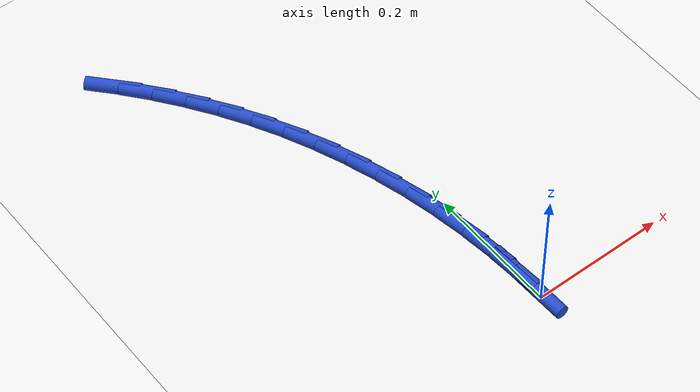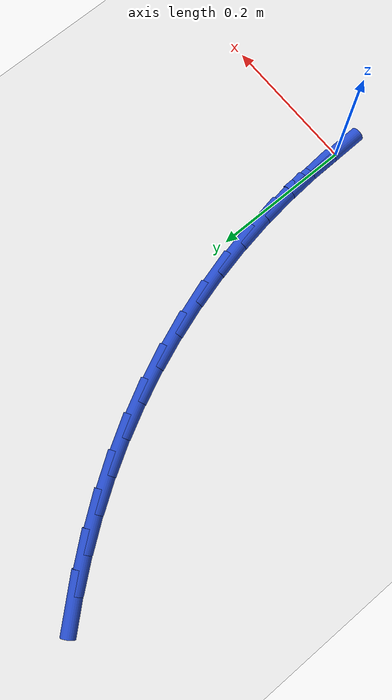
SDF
<sdf version="1.6">
 <world name="default">
  <model name="ground_plane">
   <static>1</static>
   <link name="link">
    <collision name="collision">
     <geometry><plane><normal>0 0 1</normal><size>100 100</size></plane></geometry>
     <surface><friction><ode><mu>100</mu><mu2>50</mu2></ode></friction></surface>
    </collision>
    <visual name="visual">
     <cast_shadows>0</cast_shadows>
     <geometry><plane><normal>0 0 1</normal><size>100 100</size></plane></geometry>
     <material>
      <script><uri>file://media/materials/scripts/gazebo.material</uri><name>Gazebo/WhiteGlow</name></script>
     </material>
    </visual>
   </link>
  </model>
  <model name="line">
   <link name="link_1">
    <pose>-0.0012609882438176533 0.05013131781894757 0.01 0 1.57 -1.4960783569230367</pose>
    <collision name="collision">
     <geometry><cylinder><radius>0.01</radius><length>0.08</length></cylinder></geometry>
    </collision>
    <visual name="visual">
     <material>
      <script><name>Gazebo/Blue</name><uri>file://media/materials/scripts/gazebo.material</uri></script>
     </material>
     <geometry><cylinder><radius>0.01</radius><length>0.08</length></cylinder></geometry>
    </visual>
   </link>
   <link name="link_2">
    <pose>-0.005005726093957174 0.10015631963875322 0.01 0 1.57 -1.4466648866193101</pose>
    <collision name="collision">
     <geometry><cylinder><radius>0.01</radius><length>0.08</length></cylinder></geometry>
    </collision>
    <visual name="visual">
     <material>
      <script><name>Gazebo/Blue</name><uri>file://media/materials/scripts/gazebo.material</uri></script>
     </material>
     <geometry><cylinder><radius>0.01</radius><length>0.08</length></cylinder></geometry>
    </visual>
   </link>
   <link name="link_3">
    <pose>-0.011215578899229035 0.14992553933507763 0.01 0 1.57 -1.3972039914999268</pose>
    <collision name="collision">
     <geometry><cylinder><radius>0.01</radius><length>0.08</length></cylinder></geometry>
    </collision>
    <visual name="visual">
     <material>
      <script><name>Gazebo/Blue</name><uri>file://media/materials/scripts/gazebo.material</uri></script>
     </material>
     <geometry><cylinder><radius>0.01</radius><length>0.08</length></cylinder></geometry>
    </visual>
   </link>
   <link name="link_4">
    <pose>-0.019871912008443734 0.19928951078358137 0.01 0 1.57 -1.3474918372299383</pose>
    <collision name="collision">
     <geometry><cylinder><radius>0.01</radius><length>0.08</length></cylinder></geometry>
    </collision>
    <visual name="visual">
     <material>
      <script><name>Gazebo/Blue</name><uri>file://media/materials/scripts/gazebo.material</uri></script>
     </material>
     <geometry><cylinder><radius>0.01</radius><length>0.08</length></cylinder></geometry>
    </visual>
   </link>
   <link name="link_5">
    <pose>-0.030956090770411733 0.24809876785992502 0.01 0 1.57 -1.2973256570678948</pose>
    <collision name="collision">
     <geometry><cylinder><radius>0.01</radius><length>0.08</length></cylinder></geometry>
    </collision>
    <visual name="visual">
     <material>
      <script><name>Gazebo/Blue</name><uri>file://media/materials/scripts/gazebo.material</uri></script>
     </material>
     <geometry><cylinder><radius>0.01</radius><length>0.08</length></cylinder></geometry>
    </visual>
   </link>
   <link name="link_6">
    <pose>-0.04444948053394356 0.2962038444397692 0.01 0 1.57 -1.2465053514916082</pose>
    <collision name="collision">
     <geometry><cylinder><radius>0.01</radius><length>0.08</length></cylinder></geometry>
    </collision>
    <visual name="visual">
     <material>
      <script><name>Gazebo/Blue</name><uri>file://media/materials/scripts/gazebo.material</uri></script>
     </material>
     <geometry><cylinder><radius>0.01</radius><length>0.08</length></cylinder></geometry>
    </visual>
   </link>
   <link name="link_7">
    <pose>-0.060333446647849676 0.34345527439877455 0.01 0 1.57 -1.1948355015669276</pose>
    <collision name="collision">
     <geometry><cylinder><radius>0.01</radius><length>0.08</length></cylinder></geometry>
    </collision>
    <visual name="visual">
     <material>
      <script><name>Gazebo/Blue</name><uri>file://media/materials/scripts/gazebo.material</uri></script>
     </material>
     <geometry><cylinder><radius>0.01</radius><length>0.08</length></cylinder></geometry>
    </visual>
   </link>
   <link name="link_8">
    <pose>-0.07858935446094056 0.38970359161260154 0.01 0 1.57 -1.1421279862409592</pose>
    <collision name="collision">
     <geometry><cylinder><radius>0.01</radius><length>0.08</length></cylinder></geometry>
    </collision>
    <visual name="visual">
     <material>
      <script><name>Gazebo/Blue</name><uri>file://media/materials/scripts/gazebo.material</uri></script>
     </material>
     <geometry><cylinder><radius>0.01</radius><length>0.08</length></cylinder></geometry>
    </visual>
   </link>
   <link name="link_9">
    <pose>-0.09919856932202678 0.43479932995691106 0.01 0 1.57 -1.0882226065795064</pose>
    <collision name="collision">
     <geometry><cylinder><radius>0.01</radius><length>0.08</length></cylinder></geometry>
    </collision>
    <visual name="visual">
     <material>
      <script><name>Gazebo/Blue</name><uri>file://media/materials/scripts/gazebo.material</uri></script>
     </material>
     <geometry><cylinder><radius>0.01</radius><length>0.08</length></cylinder></geometry>
    </visual>
   </link>
   <link name="link_10">
    <pose>-0.12214195453787823 0.47859389971942773 0.01 0 1.57 -1.0341382499375322</pose>
    <collision name="collision">
     <geometry><cylinder><radius>0.01</radius><length>0.08</length></cylinder></geometry>
    </collision>
    <visual name="visual">
     <material>
      <script><name>Gazebo/Blue</name><uri>file://media/materials/scripts/gazebo.material</uri></script>
     </material>
     <geometry><cylinder><radius>0.01</radius><length>0.08</length></cylinder></geometry>
    </visual>
   </link>
   <link name="link_11">
    <pose>-0.14736718164546128 0.5209966538801966 0.01 0 1.57 -0.9817946123763654</pose>
    <collision name="collision">
     <geometry><cylinder><radius>0.01</radius><length>0.08</length></cylinder></geometry>
    </collision>
    <visual name="visual">
     <material>
      <script><name>Gazebo/Blue</name><uri>file://media/materials/scripts/gazebo.material</uri></script>
     </material>
     <geometry><cylinder><radius>0.01</radius><length>0.08</length></cylinder></geometry>
    </visual>
   </link>
   <link name="link_12">
    <pose>-0.17476862793058476 0.5620099809041307 0.01 0 1.57 -0.931486891893913</pose>
    <collision name="collision">
     <geometry><cylinder><radius>0.01</radius><length>0.08</length></cylinder></geometry>
    </collision>
    <visual name="visual">
     <material>
      <script><name>Gazebo/Blue</name><uri>file://media/materials/scripts/gazebo.material</uri></script>
     </material>
     <geometry><cylinder><radius>0.01</radius><length>0.08</length></cylinder></geometry>
    </visual>
   </link>
   <link name="link_13">
    <pose>-0.20423586334512314 0.6016446613928886 0.01 0 1.57 -0.8832945560408655</pose>
    <collision name="collision">
     <geometry><cylinder><radius>0.01</radius><length>0.08</length></cylinder></geometry>
    </collision>
    <visual name="visual">
     <material>
      <script><name>Gazebo/Blue</name><uri>file://media/materials/scripts/gazebo.material</uri></script>
     </material>
     <geometry><cylinder><radius>0.01</radius><length>0.08</length></cylinder></geometry>
    </visual>
   </link>
   <link name="link_14">
    <pose>-0.23565845784095066 0.6399114759481299 0.01 0 1.57 -0.8372517283104789</pose>
    <collision name="collision">
     <geometry><cylinder><radius>0.01</radius><length>0.08</length></cylinder></geometry>
    </collision>
    <visual name="visual">
     <material>
      <script><name>Gazebo/Blue</name><uri>file://media/materials/scripts/gazebo.material</uri></script>
     </material>
     <geometry><cylinder><radius>0.01</radius><length>0.08</length></cylinder></geometry>
    </visual>
   </link>
   <link name="link_130">
    <pose>1.9081958235744878e-17 8.326672684688674e-17 0.01 0 1.57 -1.5455318360563872</pose>
    <collision name="collision">
     <geometry><cylinder><radius>0.01</radius><length>0.08</length></cylinder></geometry>
    </collision>
    <visual name="visual">
     <material>
      <script><name>Gazebo/Blue</name><uri>file://media/materials/scripts/gazebo.material</uri></script>
     </material>
     <geometry><cylinder><radius>0.01</radius><length>0.08</length></cylinder></geometry>
    </visual>
   </link>
   <link name="link_131">
    <pose>-0.0012669244053955982 0.050135775546707353 0.01 0 1.57 -1.5455318360563872</pose>
    <collision name="collision">
     <geometry><cylinder><radius>0.01</radius><length>0.08</length></cylinder></geometry>
    </collision>
    <visual name="visual">
     <material>
      <script><name>Gazebo/Blue</name><uri>file://media/materials/scripts/gazebo.material</uri></script>
     </material>
     <geometry><cylinder><radius>0.01</radius><length>0.08</length></cylinder></geometry>
    </visual>
   </link>
  </model>
 </world>
</sdf>
